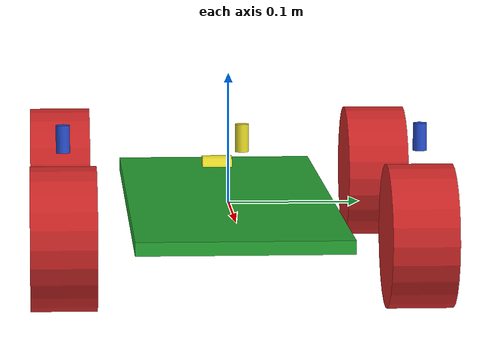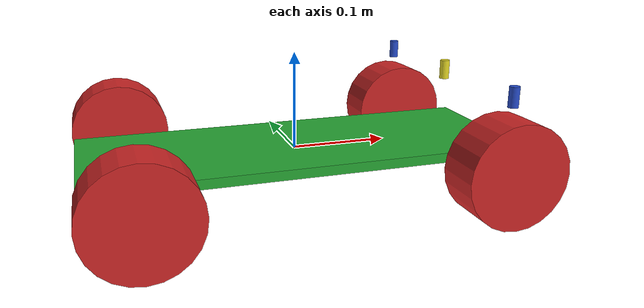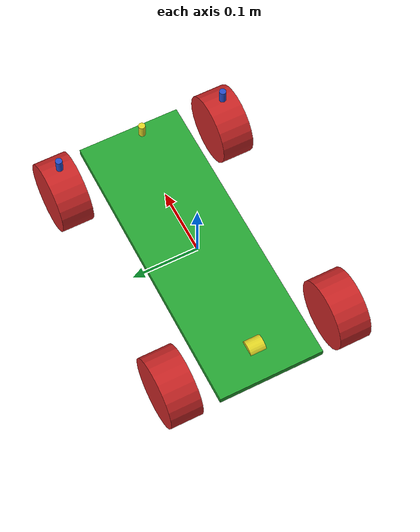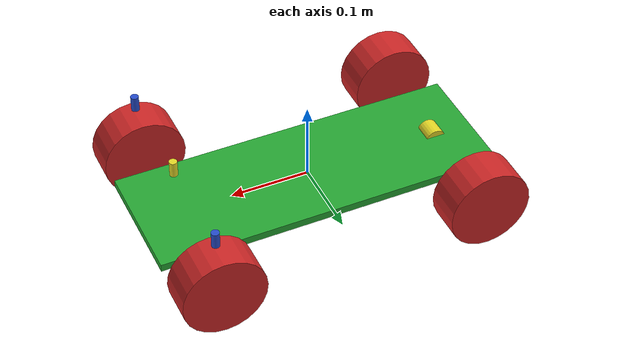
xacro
<?xml version='1.0'?>

<!--Gazebo does not seem to like capital letters in the robot namespace-->
<robot name="scte_bot" xmlns:xacro="http://www.ros.org/wiki/xacro">

    <xacro:arg name="robot_namespace" default="/scte_bot"/>

    <!-- ackermann components and plugins -->
    <xacro:include filename="$(find scte_description)/urdf/plugins/scte_plugins.gazebo" />
    <xacro:include filename="$(find scte_description)/urdf/scte_wheel.xacro"/>
    <xacro:include filename="$(find scte_description)/urdf/scte_inertials.xacro"/>

    <!-- physical components -->

    <!-- Math constants -->
    <xacro:property name="deg_to_rad" value="0.01745329251994329577"/>

    <!-- Robot base dimensions -->
    <xacro:property name="base_length" value="0.442" /> <!-- wheel base derived from this -->
    <xacro:property name="base_width" value="0.157" /> <!-- wheel track derived from this -->
    <xacro:property name="base_height" value="0.01" />
    <xacro:property name="base_mass" value="5" />

    <!-- Wheel link dimensions -->
    <xacro:property name="wheel_radius" value="0.0525" />
    <xacro:property name="wheel_thickness" value="0.048" />
    <xacro:property name="wheel_mass" value="1" />

    <!-- Steering link dimensions -->
    <xacro:property name="steer_radius" value="0.005" />
    <xacro:property name="steer_thickness" value="0.02" />
    <xacro:property name="steer_mass" value="1" />

    <!-- Axle positions -->
    <xacro:property name="axle_offset" value="0.05" />
    <xacro:property name="steer_offset" value="0.02" />

    <!-- scte dims -->
    <xacro:property name="scte_chassis_length_sq" value="${base_length * base_length}"/>
    <xacro:property name="scte_chassis_width_sq" value="${base_width * base_width}"/>
    <xacro:property name="scte_chassis_height_sq" value="${base_height * base_height}"/>

    <!-- base footprint for nav -->
    <link name='base_footprint'/>

    <joint name="base_link_TO_base_footprint" type="fixed">
        <origin xyz="0 0 0" rpy="0 0 0"/>
        <parent link="base_footprint"/>
        <child link="base_link"/>
    </joint>

    <!-- Base link -->
    <link name="base_link">
        <visual>
            <origin xyz="0 0 0" rpy="0 0 0"/>
            <geometry>
                <box size="${base_length} ${base_width} ${base_height}"/>
            </geometry>
            <material name="green" />
        </visual>
        <collision>
            <origin xyz="0 0 0" rpy="0 0 0"/>
            <geometry>
                <box size="${base_length} ${base_width} ${base_height}"/>
            </geometry>
        </collision>
        <!--xacro:solid_cuboid_inertial
                rpy="0 0 0" xyz="0 0 0"
                mass="${base_mass}"
                x="${base_length}" y="${base_width}" z="${base_height}" /-->
    </link>

    <!-- Inertial link stores the robot's inertial information -->
    <link name="inertial_link">
        <inertial>
            <mass value="${base_mass}" />
            <origin xyz="0 0 0" />
            <inertia ixx="${(1/12 * base_mass) * (scte_chassis_height_sq + scte_chassis_width_sq)}" ixy="0" ixz="0"
                     iyy="${(1/12 * base_mass) * (scte_chassis_height_sq + scte_chassis_length_sq)}" iyz="0"
                     izz="${(1/12 * base_mass) * (scte_chassis_length_sq + scte_chassis_width_sq)}" />
        </inertial>
    </link>

    <joint name="inertial_to_base_link_joint" type="fixed">
        <origin xyz="0 0 0" rpy="0 0 0" />
        <parent link="base_link" />
        <child link="inertial_link" />
    </joint>

    <!-- Front steer and rear wheel joints required for ackermann_steering_controller -->
    <xacro:front_steer
            name="front"
            parent="base"
            steer_radius="${steer_radius}"
            steer_thickness="${steer_thickness}"
            steer_mass="${steer_mass}"
            base_length="${base_length}"
            base_width="${base_width}"
            axle_offset="${axle_offset}"
            steer_height="${wheel_radius+steer_offset}">
    </xacro:front_steer>

    <xacro:rear_wheel
            name="rear"
            parent="base"
            wheel_radius="${wheel_radius/4}"
            wheel_thickness="${wheel_thickness/2}"
            wheel_mass="${wheel_mass/32}">
        <origin xyz="${-base_length/2+axle_offset} 0 0" rpy="${-90 * deg_to_rad} 0 0"/>
    </xacro:rear_wheel>

    <!-- Steerable front wheels -->
    <xacro:front_wheel_lr
            name="front_right"
            parent="base"
            reflect="-1"
            wheel_radius="${wheel_radius}"
            wheel_thickness="${wheel_thickness}"
            wheel_mass="${wheel_mass}"
            steer_radius="${steer_radius}"
            steer_thickness="${steer_thickness}"
            steer_mass="${steer_mass}"
            base_length="${base_length}"
            base_width="${base_width}"
            axle_offset="${axle_offset}"
            steer_height="${wheel_radius+steer_offset}">
    </xacro:front_wheel_lr>
    <xacro:front_wheel_lr
            name="front_left"
            parent="base"
            reflect="1"
            wheel_radius="${wheel_radius}"
            wheel_thickness="${wheel_thickness}"
            wheel_mass="${wheel_mass}"
            steer_radius="${steer_radius}"
            steer_thickness="${steer_thickness}"
            steer_mass="${steer_mass}"
            base_length="${base_length}"
            base_width="${base_width}"
            axle_offset="${axle_offset}"
            steer_height="${wheel_radius+steer_offset}">
    </xacro:front_wheel_lr>

    <!-- Rear wheels -->
    <xacro:rear_wheel_lr
            name="rear_right"
            parent="base"
            wheel_radius="${wheel_radius}"
            wheel_thickness="${wheel_thickness}"
            wheel_mass="${wheel_mass}">
        <origin xyz="${-base_length/2+axle_offset} ${-base_width/2-axle_offset} 0" rpy="${-90 * deg_to_rad} 0 0"/>
    </xacro:rear_wheel_lr>
    <xacro:rear_wheel_lr
            name="rear_left"
            parent="base"
            wheel_radius="${wheel_radius}"
            wheel_thickness="${wheel_thickness}"
            wheel_mass="${wheel_mass}">
        <origin xyz="${-base_length/2+axle_offset} ${+base_width/2+axle_offset} 0" rpy="${-90 * deg_to_rad} 0 0"/>
    </xacro:rear_wheel_lr>

    <!-- Colour -->
    <gazebo reference="base_link">
        <material>Gazebo/Green</material>
    </gazebo>

</robot>

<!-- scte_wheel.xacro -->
<robot xmlns:xacro="http://www.ros.org/wiki/xacro">

    <!-- Properties -->
    <xacro:property name="steer_effort" value="10.0"/>
    <xacro:property name="steer_velocity" value="5.0"/>
    <xacro:property name="steer_limit_deg" value="45.0"/>

    <!-- Bicycle model front steering link (required for steer_drive_controller) -->
    <xacro:macro name="front_steer"
                 params="
                    name
                    parent
                    steer_radius
                    steer_thickness
                    steer_mass
                    base_length
                    base_width
                    axle_offset
                    steer_height">
        <link name="${name}_steer_link">
            <visual>
                <origin xyz="0 0 0" rpy="0 0 0"/>
                <geometry>
                    <cylinder radius="${steer_radius}" length="${steer_thickness}"/>
                </geometry>
                <material name="yellow" />
            </visual>
            <collision>
                <origin xyz="0 0 0" rpy="0 0 0"/>
                <geometry>
                    <cylinder radius="${steer_radius}" length="${steer_thickness}"/>
                </geometry>
            </collision>
            <xacro:solid_cylinder_inertial
                    rpy="0 0 0" xyz="0 0 0"
                    mass="${steer_mass}"
                    radius="${steer_radius}" length="${steer_thickness}" />
        </link>

        <joint name="${name}_steer_joint" type="revolute">
            <parent link="${parent}_link"/>
            <child link="${name}_steer_link"/>
            <origin xyz="${base_length/2-axle_offset} 0 ${steer_height}" rpy="0 0 0"/>
            <axis xyz="0 0 1"/>
            <limit effort="${steer_effort}"
                   lower="${-180.0 * deg_to_rad}" upper="${180.0 * deg_to_rad}"
                   velocity="${steer_velocity}"/>
        </joint>

        <transmission name="${name}_steer_joint_trans">
            <type>transmission_interface/SimpleTransmission</type>
            <actuator name="${name}_steer_joint_motor">
                <mechanicalReduction>1</mechanicalReduction>
                <hardwareInterface>hardware_interface/PositionJointInterface</hardwareInterface>
            </actuator>
            <joint name="${name}_steer_joint">
                <hardwareInterface>hardware_interface/PositionJointInterface</hardwareInterface>
            </joint>
        </transmission>

        <gazebo reference="${name}_steer_link">
            <material>Gazebo/Yellow</material>
        </gazebo>
    </xacro:macro>

    <!-- Car steering model front (steerable) wheel links (left/right) -->
    <xacro:macro name="front_wheel_lr"
                 params="
                    name
                    parent
                    reflect
                    wheel_radius
                    wheel_thickness
                    wheel_mass
                    steer_radius
                    steer_thickness
                    steer_mass
                    base_length
                    base_width
                    axle_offset
                    steer_height">
        <link name="${name}_steer_link">
            <visual>
                <origin xyz="0 0 0" rpy="0 0 0"/>
                <geometry>
                    <cylinder radius="${steer_radius}" length="${steer_thickness}"/>
                </geometry>
                <material name="blue" />
            </visual>
            <collision>
                <origin xyz="0 0 0" rpy="0 0 0"/>
                <geometry>
                    <cylinder radius="${steer_radius}" length="${steer_thickness}"/>
                </geometry>
            </collision>
            <xacro:solid_cylinder_inertial
                    rpy="0 0 0" xyz="0 0 0"
                    mass="${steer_mass}"
                    radius="${steer_radius}" length="${steer_thickness}" />
        </link>

        <joint name="${name}_steer_joint" type="revolute">
            <parent link="${parent}_link"/>
            <child link="${name}_steer_link"/>
            <origin xyz="${base_length/2-axle_offset} ${reflect*(base_width/2+axle_offset)} ${steer_height}" rpy="0 0 0"/>
            <axis xyz="0 0 1"/>
            <limit effort="${steer_effort}"
                   lower="${steer_limit_deg * deg_to_rad * -1.0}" upper="${steer_limit_deg * deg_to_rad}"
                   velocity="${steer_velocity}"/>
        </joint>

        <link name="${name}_wheel_link">
            <visual>
                <origin xyz="0 0 0" rpy="0 0 0"/>
                <geometry>
                    <cylinder radius="${wheel_radius}" length="${wheel_thickness}"/>
                </geometry>
                <material name="red" />
            </visual>
            <collision>
                <origin xyz="0 0 0" rpy="0 0 0"/>
                <geometry>
                    <cylinder radius="${wheel_radius}" length="${wheel_thickness}"/>
                </geometry>
            </collision>
            <xacro:solid_cylinder_inertial
                    rpy="0 0 0" xyz="0 0 0"
                    mass="${wheel_mass}"
                    radius="${wheel_radius}" length="${wheel_thickness}" />
        </link>

        <joint name="${name}_wheel_joint" type="continuous">
            <parent link="${name}_steer_link"/>
            <child link="${name}_wheel_link"/>
            <origin xyz="0 0 ${-steer_height}" rpy="${-90 * deg_to_rad} 0 0"/>
            <axis xyz="0 0 1"/>
        </joint>

        <transmission name="${name}_steer_joint_trans">
            <type>transmission_interface/SimpleTransmission</type>
            <actuator name="${name}_steer_joint_motor">
                <mechanicalReduction>1</mechanicalReduction>
                <hardwareInterface>hardware_interface/PositionJointInterface</hardwareInterface>
            </actuator>
            <joint name="${name}_steer_joint">
                <hardwareInterface>hardware_interface/PositionJointInterface</hardwareInterface>
            </joint>
        </transmission>

        <transmission name="${name}_wheel_joint_trans">
            <type>transmission_interface/SimpleTransmission</type>
            <actuator name="${name}_wheel_joint_motor">
                <mechanicalReduction>1</mechanicalReduction>
                <hardwareInterface>hardware_interface/VelocityJointInterface</hardwareInterface>
            </actuator>
            <joint name="${name}_wheel_joint">
                <hardwareInterface>hardware_interface/VelocityJointInterface</hardwareInterface>
            </joint>
        </transmission>

        <gazebo reference="${name}_steer_link">
            <material>Gazebo/Blue</material>
        </gazebo>

        <gazebo reference="${name}_wheel_link">
            <material>Gazebo/Red</material>
        </gazebo>
    </xacro:macro>

    <!-- Bicycle model rear wheel link (required for steer_drive_controller) -->
    <xacro:macro name="rear_wheel"
                 params="
      name
      parent
      wheel_radius
      wheel_thickness
      wheel_mass
      *origin">
        <link name="${name}_wheel_link">
            <visual>
                <origin xyz="0 0 0" rpy="0 0 0"/>
                <geometry>
                    <cylinder radius="${wheel_radius}" length="${wheel_thickness}"/>
                </geometry>
                <material name="yellow" />
            </visual>
            <collision>
                <origin xyz="0 0 0" rpy="0 0 0"/>
                <geometry>
                    <cylinder radius="${wheel_radius}" length="${wheel_thickness}"/>
                </geometry>
            </collision>
            <xacro:solid_cylinder_inertial
                    rpy="0 0 0" xyz="0 0 0"
                    mass="${wheel_mass}"
                    radius="${wheel_radius}" length="${wheel_thickness}" />
        </link>

        <joint name="${name}_wheel_joint" type="continuous">
            <parent link="${parent}_link"/>
            <child link="${name}_wheel_link"/>
            <xacro:insert_block name="origin"/>
            <axis xyz="0 0 1"/>
        </joint>

        <transmission name="${name}_wheel_joint_trans">
            <type>transmission_interface/SimpleTransmission</type>
            <actuator name="${name}_wheel_joint_motor">
                <mechanicalReduction>1</mechanicalReduction>
                <hardwareInterface>hardware_interface/VelocityJointInterface</hardwareInterface>
            </actuator>
            <joint name="${name}_wheel_joint">
                <hardwareInterface>hardware_interface/VelocityJointInterface</hardwareInterface>
            </joint>
        </transmission>

        <gazebo reference="${name}_wheel_link">
            <material>Gazebo/Yellow</material>
        </gazebo>
    </xacro:macro>

    <!-- Bicycle model front wheel link (passive - no transmission) -->
    <xacro:macro name="front_wheel"
                 params="
      name
      parent
      wheel_radius
      wheel_thickness
      wheel_mass
      *origin">
        <link name="${name}_wheel_link">
            <visual>
                <origin xyz="0 0 0" rpy="0 0 0"/>
                <geometry>
                    <cylinder radius="${wheel_radius}" length="${wheel_thickness}"/>
                </geometry>
                <material name="yellow" />
            </visual>
            <collision>
                <origin xyz="0 0 0" rpy="0 0 0"/>
                <geometry>
                    <cylinder radius="${wheel_radius}" length="${wheel_thickness}"/>
                </geometry>
            </collision>
            <xacro:solid_cylinder_inertial
                    rpy="0 0 0" xyz="0 0 0"
                    mass="${wheel_mass}"
                    radius="${wheel_radius}" length="${wheel_thickness}" />
        </link>

        <joint name="${name}_wheel_joint" type="continuous">
            <parent link="${parent}_link"/>
            <child link="${name}_wheel_link"/>
            <xacro:insert_block name="origin"/>
            <axis xyz="0 0 1"/>
        </joint>

        <gazebo reference="${name}_wheel_link">
            <material>Gazebo/Yellow</material>
        </gazebo>

        <gazebo reference="${name}_wheel_joint">
            <provideFeedback>true</provideFeedback>
        </gazebo>
    </xacro:macro>

    <!-- Car steering model rear wheel links (left/right) -->
    <xacro:macro name="rear_wheel_lr"
                 params="
      name
      parent
      wheel_radius
      wheel_thickness
      wheel_mass
      *origin">
        <link name="${name}_wheel_link">
            <visual>
                <origin xyz="0 0 0" rpy="0 0 0"/>
                <geometry>
                    <cylinder radius="${wheel_radius}" length="${wheel_thickness}"/>
                </geometry>
                <material name="red" />
            </visual>
            <collision>
                <origin xyz="0 0 0" rpy="0 0 0"/>
                <geometry>
                    <cylinder radius="${wheel_radius}" length="${wheel_thickness}"/>
                </geometry>
            </collision>
            <xacro:solid_cylinder_inertial
                    rpy="0 0 0" xyz="0 0 0"
                    mass="${wheel_mass}"
                    radius="${wheel_radius}" length="${wheel_thickness}" />
        </link>

        <joint name="${name}_wheel_joint" type="continuous">
            <parent link="${parent}_link"/>
            <child link="${name}_wheel_link"/>
            <xacro:insert_block name="origin"/>
            <axis xyz="0 0 1"/>
        </joint>

        <transmission name="${name}_wheel_joint_trans">
            <type>transmission_interface/SimpleTransmission</type>
            <actuator name="${name}_wheel_joint_motor">
                <mechanicalReduction>1</mechanicalReduction>
                <hardwareInterface>hardware_interface/VelocityJointInterface</hardwareInterface>
            </actuator>
            <joint name="${name}_wheel_joint">
                <hardwareInterface>hardware_interface/VelocityJointInterface</hardwareInterface>
            </joint>
        </transmission>

        <gazebo reference="${name}_wheel_link">
            <material>Gazebo/Red</material>
        </gazebo>
    </xacro:macro>

</robot>
